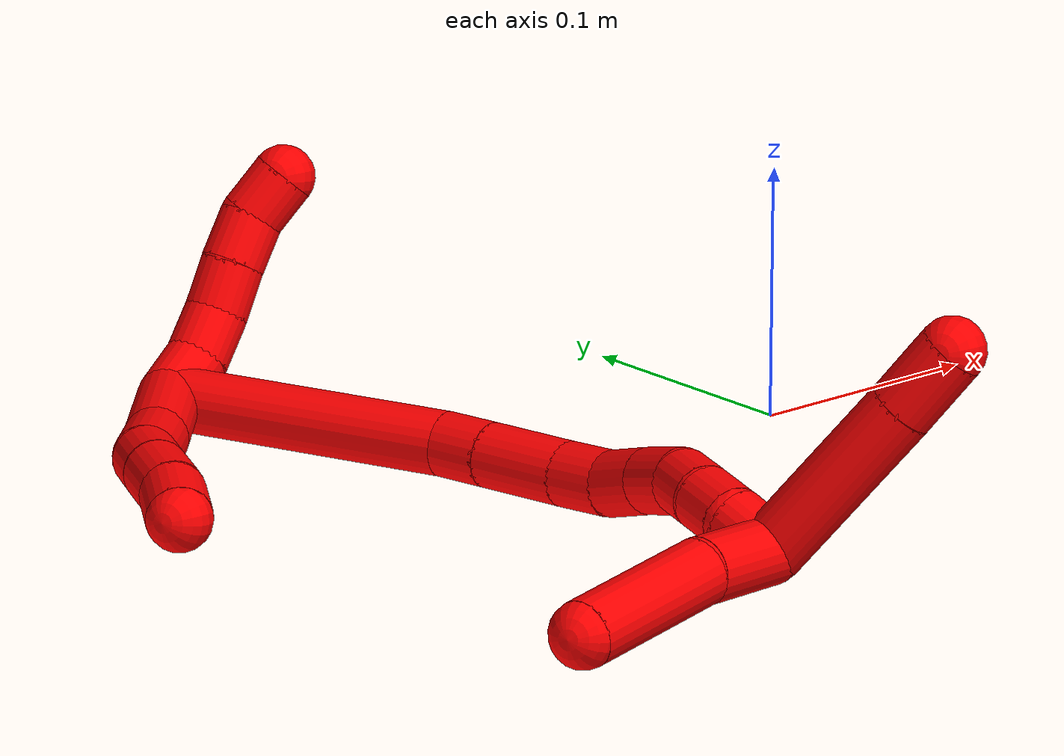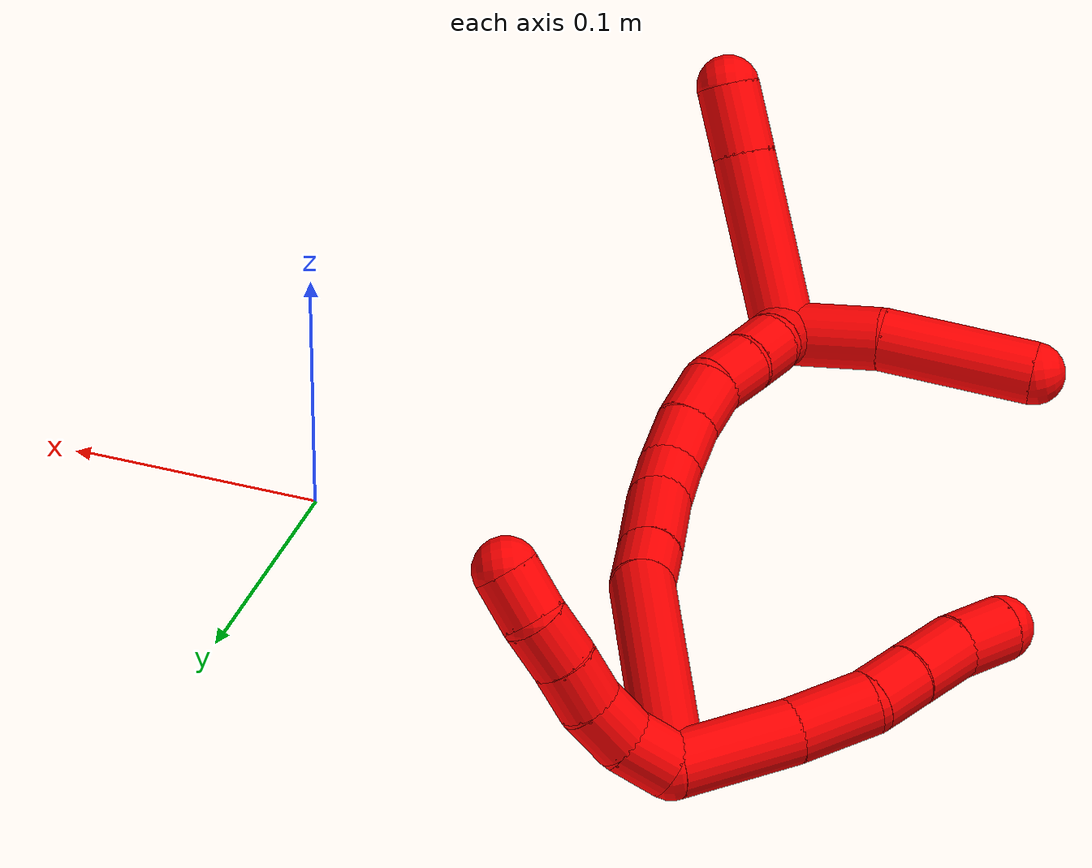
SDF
<sdf version="1.7">
 <world name="default">
  <model name="2">
   <static>0</static>
   <link name="2">
    <collision name="collision-cylinder-e_1_2_8">
     <pose>-0.003191 -0.010107 0.022033 0.430101 -0.13089 -0.028629</pose>
     <geometry><cylinder><radius>0.0125</radius><length>0.0489</length></cylinder></geometry>
     <surface>
      <friction><ode><mu>1.16</mu><mu2>1.16</mu2><slip1>0</slip1><slip2>0</slip2></ode></friction>
      <contact><ode><kp>1e+06</kp><kd>1</kd><max_vel>0</max_vel><min_depth>0.001</min_depth></ode></contact>
     </surface>
    </collision>
    <visual name="visual-cylinder-e_1_2_8">
     <pose>-0.003191 -0.010107 0.022033 0.430101 -0.13089 -0.028629</pose>
     <geometry><cylinder><radius>0.0125</radius><length>0.0489</length></cylinder></geometry>
     <material><ambient>1 0 0 1</ambient></material>
    </visual>
    <collision name="collision-cylinder-e_2_8_9">
     <pose>-0.006715 -0.026523 0.058669 0.407767 -0.020921 -0.004326</pose>
     <geometry><cylinder><radius>0.0125</radius><length>0.031822</length></cylinder></geometry>
     <surface>
      <friction><ode><mu>1.16</mu><mu2>1.16</mu2><slip1>0</slip1><slip2>0</slip2></ode></friction>
      <contact><ode><kp>1e+06</kp><kd>1</kd><max_vel>0</max_vel><min_depth>0.001</min_depth></ode></contact>
     </surface>
    </collision>
    <visual name="visual-cylinder-e_2_8_9">
     <pose>-0.006715 -0.026523 0.058669 0.407767 -0.020921 -0.004326</pose>
     <geometry><cylinder><radius>0.0125</radius><length>0.031822</length></cylinder></geometry>
     <material><ambient>1 0 0 1</ambient></material>
    </visual>
    <collision name="collision-cylinder-e_3_9_10">
     <pose>-0.007353 -0.039831 0.081183 0.72432 -0.028839 -0.010927</pose>
     <geometry><cylinder><radius>0.0125</radius><length>0.021135</length></cylinder></geometry>
     <surface>
      <friction><ode><mu>1.16</mu><mu2>1.16</mu2><slip1>0</slip1><slip2>0</slip2></ode></friction>
      <contact><ode><kp>1e+06</kp><kd>1</kd><max_vel>0</max_vel><min_depth>0.001</min_depth></ode></contact>
     </surface>
    </collision>
    <visual name="visual-cylinder-e_3_9_10">
     <pose>-0.007353 -0.039831 0.081183 0.72432 -0.028839 -0.010927</pose>
     <geometry><cylinder><radius>0.0125</radius><length>0.021135</length></cylinder></geometry>
     <material><ambient>1 0 0 1</ambient></material>
    </visual>
    <collision name="collision-cylinder-e_4_10_11">
     <pose>-0.008657 -0.055552 0.09794 0.778403 -0.080301 -0.032948</pose>
     <geometry><cylinder><radius>0.0125</radius><length>0.024926</length></cylinder></geometry>
     <surface>
      <friction><ode><mu>1.16</mu><mu2>1.16</mu2><slip1>0</slip1><slip2>0</slip2></ode></friction>
      <contact><ode><kp>1e+06</kp><kd>1</kd><max_vel>0</max_vel><min_depth>0.001</min_depth></ode></contact>
     </surface>
    </collision>
    <visual name="visual-cylinder-e_4_10_11">
     <pose>-0.008657 -0.055552 0.09794 0.778403 -0.080301 -0.032948</pose>
     <geometry><cylinder><radius>0.0125</radius><length>0.024926</length></cylinder></geometry>
     <material><ambient>1 0 0 1</ambient></material>
    </visual>
    <collision name="collision-cylinder-e_5_11_6">
     <pose>-0.011726 -0.071173 0.11589 0.648364 -0.179195 -0.06036</pose>
     <geometry><cylinder><radius>0.0125</radius><length>0.023218</length></cylinder></geometry>
     <surface>
      <friction><ode><mu>1.16</mu><mu2>1.16</mu2><slip1>0</slip1><slip2>0</slip2></ode></friction>
      <contact><ode><kp>1e+06</kp><kd>1</kd><max_vel>0</max_vel><min_depth>0.001</min_depth></ode></contact>
     </surface>
    </collision>
    <visual name="visual-cylinder-e_5_11_6">
     <pose>-0.011726 -0.071173 0.11589 0.648364 -0.179195 -0.06036</pose>
     <geometry><cylinder><radius>0.0125</radius><length>0.023218</length></cylinder></geometry>
     <material><ambient>1 0 0 1</ambient></material>
    </visual>
    <collision name="collision-cylinder-e_1_2_12">
     <pose>0.006511 -0.001034 -0.007519 3.00488 0.708972 2.77579</pose>
     <geometry><cylinder><radius>0.0125</radius><length>0.02</length></cylinder></geometry>
     <surface>
      <friction><ode><mu>1.16</mu><mu2>1.16</mu2><slip1>0</slip1><slip2>0</slip2></ode></friction>
      <contact><ode><kp>1e+06</kp><kd>1</kd><max_vel>0</max_vel><min_depth>0.001</min_depth></ode></contact>
     </surface>
    </collision>
    <visual name="visual-cylinder-e_1_2_12">
     <pose>0.006511 -0.001034 -0.007519 3.00488 0.708972 2.77579</pose>
     <geometry><cylinder><radius>0.0125</radius><length>0.02</length></cylinder></geometry>
     <material><ambient>1 0 0 1</ambient></material>
    </visual>
    <collision name="collision-cylinder-e_2_12_13">
     <pose>0.021533 -0.002631 -0.020258 3.03431 1.0182 2.94979</pose>
     <geometry><cylinder><radius>0.0125</radius><length>0.02</length></cylinder></geometry>
     <surface>
      <friction><ode><mu>1.16</mu><mu2>1.16</mu2><slip1>0</slip1><slip2>0</slip2></ode></friction>
      <contact><ode><kp>1e+06</kp><kd>1</kd><max_vel>0</max_vel><min_depth>0.001</min_depth></ode></contact>
     </surface>
    </collision>
    <visual name="visual-cylinder-e_2_12_13">
     <pose>0.021533 -0.002631 -0.020258 3.03431 1.0182 2.94979</pose>
     <geometry><cylinder><radius>0.0125</radius><length>0.02</length></cylinder></geometry>
     <material><ambient>1 0 0 1</ambient></material>
    </visual>
    <collision name="collision-cylinder-e_3_13_14">
     <pose>0.039417 -0.004058 -0.028855 2.89097 1.21457 2.78292</pose>
     <geometry><cylinder><radius>0.0125</radius><length>0.02</length></cylinder></geometry>
     <surface>
      <friction><ode><mu>1.16</mu><mu2>1.16</mu2><slip1>0</slip1><slip2>0</slip2></ode></friction>
      <contact><ode><kp>1e+06</kp><kd>1</kd><max_vel>0</max_vel><min_depth>0.001</min_depth></ode></contact>
     </surface>
    </collision>
    <visual name="visual-cylinder-e_3_13_14">
     <pose>0.039417 -0.004058 -0.028855 2.89097 1.21457 2.78292</pose>
     <geometry><cylinder><radius>0.0125</radius><length>0.02</length></cylinder></geometry>
     <material><ambient>1 0 0 1</ambient></material>
    </visual>
    <collision name="collision-cylinder-e_4_14_15">
     <pose>0.05788 -0.006115 -0.036225 2.85141 1.1411 2.69385</pose>
     <geometry><cylinder><radius>0.0125</radius><length>0.02</length></cylinder></geometry>
     <surface>
      <friction><ode><mu>1.16</mu><mu2>1.16</mu2><slip1>0</slip1><slip2>0</slip2></ode></friction>
      <contact><ode><kp>1e+06</kp><kd>1</kd><max_vel>0</max_vel><min_depth>0.001</min_depth></ode></contact>
     </surface>
    </collision>
    <visual name="visual-cylinder-e_4_14_15">
     <pose>0.05788 -0.006115 -0.036225 2.85141 1.1411 2.69385</pose>
     <geometry><cylinder><radius>0.0125</radius><length>0.02</length></cylinder></geometry>
     <material><ambient>1 0 0 1</ambient></material>
    </visual>
    <collision name="collision-cylinder-e_5_15_5">
     <pose>0.075226 -0.011569 -0.043917 2.2857 0.971136 1.71603</pose>
     <geometry><cylinder><radius>0.0125</radius><length>0.02</length></cylinder></geometry>
     <surface>
      <friction><ode><mu>1.16</mu><mu2>1.16</mu2><slip1>0</slip1><slip2>0</slip2></ode></friction>
      <contact><ode><kp>1e+06</kp><kd>1</kd><max_vel>0</max_vel><min_depth>0.001</min_depth></ode></contact>
     </surface>
    </collision>
    <visual name="visual-cylinder-e_5_15_5">
     <pose>0.075226 -0.011569 -0.043917 2.2857 0.971136 1.71603</pose>
     <geometry><cylinder><radius>0.0125</radius><length>0.02</length></cylinder></geometry>
     <material><ambient>1 0 0 1</ambient></material>
    </visual>
    <collision name="collision-cylinder-e_1_2_16">
     <pose>0.000684 -0.058507 -0.002473 1.61303 0.011681 0.012185</pose>
     <geometry><cylinder><radius>0.0125</radius><length>0.117126</length></cylinder></geometry>
     <surface>
      <friction><ode><mu>1.16</mu><mu2>1.16</mu2><slip1>0</slip1><slip2>0</slip2></ode></friction>
      <contact><ode><kp>1e+06</kp><kd>1</kd><max_vel>0</max_vel><min_depth>0.001</min_depth></ode></contact>
     </surface>
    </collision>
    <visual name="visual-cylinder-e_1_2_16">
     <pose>0.000684 -0.058507 -0.002473 1.61303 0.011681 0.012185</pose>
     <geometry><cylinder><radius>0.0125</radius><length>0.117126</length></cylinder></geometry>
     <material><ambient>1 0 0 1</ambient></material>
    </visual>
    <collision name="collision-cylinder-e_2_16_17">
     <pose>0.001384 -0.127619 -0.003081 1.39678 0.001503 0.001262</pose>
     <geometry><cylinder><radius>0.0125</radius><length>0.021536</length></cylinder></geometry>
     <surface>
      <friction><ode><mu>1.16</mu><mu2>1.16</mu2><slip1>0</slip1><slip2>0</slip2></ode></friction>
      <contact><ode><kp>1e+06</kp><kd>1</kd><max_vel>0</max_vel><min_depth>0.001</min_depth></ode></contact>
     </surface>
    </collision>
    <visual name="visual-cylinder-e_2_16_17">
     <pose>0.001384 -0.127619 -0.003081 1.39678 0.001503 0.001262</pose>
     <geometry><cylinder><radius>0.0125</radius><length>0.021536</length></cylinder></geometry>
     <material><ambient>1 0 0 1</ambient></material>
    </visual>
    <collision name="collision-cylinder-e_3_17_18">
     <pose>0.00127 -0.155616 0.001443 1.41904 -0.007404 -0.006358</pose>
     <geometry><cylinder><radius>0.0125</radius><length>0.035187</length></cylinder></geometry>
     <surface>
      <friction><ode><mu>1.16</mu><mu2>1.16</mu2><slip1>0</slip1><slip2>0</slip2></ode></friction>
      <contact><ode><kp>1e+06</kp><kd>1</kd><max_vel>0</max_vel><min_depth>0.001</min_depth></ode></contact>
     </surface>
    </collision>
    <visual name="visual-cylinder-e_3_17_18">
     <pose>0.00127 -0.155616 0.001443 1.41904 -0.007404 -0.006358</pose>
     <geometry><cylinder><radius>0.0125</radius><length>0.035187</length></cylinder></geometry>
     <material><ambient>1 0 0 1</ambient></material>
    </visual>
    <collision name="collision-cylinder-e_4_18_19">
     <pose>0.00153 -0.183518 0.006754 1.32367 0.035977 0.028029</pose>
     <geometry><cylinder><radius>0.0125</radius><length>0.021696</length></cylinder></geometry>
     <surface>
      <friction><ode><mu>1.16</mu><mu2>1.16</mu2><slip1>0</slip1><slip2>0</slip2></ode></friction>
      <contact><ode><kp>1e+06</kp><kd>1</kd><max_vel>0</max_vel><min_depth>0.001</min_depth></ode></contact>
     </surface>
    </collision>
    <visual name="visual-cylinder-e_4_18_19">
     <pose>0.00153 -0.183518 0.006754 1.32367 0.035977 0.028029</pose>
     <geometry><cylinder><radius>0.0125</radius><length>0.021696</length></cylinder></geometry>
     <material><ambient>1 0 0 1</ambient></material>
    </visual>
    <collision name="collision-cylinder-e_5_19_20">
     <pose>0.004906 -0.203706 0.013702 1.15303 0.274866 0.179368</pose>
     <geometry><cylinder><radius>0.0125</radius><length>0.022</length></cylinder></geometry>
     <surface>
      <friction><ode><mu>1.16</mu><mu2>1.16</mu2><slip1>0</slip1><slip2>0</slip2></ode></friction>
      <contact><ode><kp>1e+06</kp><kd>1</kd><max_vel>0</max_vel><min_depth>0.001</min_depth></ode></contact>
     </surface>
    </collision>
    <visual name="visual-cylinder-e_5_19_20">
     <pose>0.004906 -0.203706 0.013702 1.15303 0.274866 0.179368</pose>
     <geometry><cylinder><radius>0.0125</radius><length>0.022</length></cylinder></geometry>
     <material><ambient>1 0 0 1</ambient></material>
    </visual>
    <collision name="collision-cylinder-e_6_20_21">
     <pose>0.010296 -0.222386 0.023571 1.01646 0.223285 0.124735</pose>
     <geometry><cylinder><radius>0.0125</radius><length>0.021719</length></cylinder></geometry>
     <surface>
      <friction><ode><mu>1.16</mu><mu2>1.16</mu2><slip1>0</slip1><slip2>0</slip2></ode></friction>
      <contact><ode><kp>1e+06</kp><kd>1</kd><max_vel>0</max_vel><min_depth>0.001</min_depth></ode></contact>
     </surface>
    </collision>
    <visual name="visual-cylinder-e_6_20_21">
     <pose>0.010296 -0.222386 0.023571 1.01646 0.223285 0.124735</pose>
     <geometry><cylinder><radius>0.0125</radius><length>0.021719</length></cylinder></geometry>
     <material><ambient>1 0 0 1</ambient></material>
    </visual>
    <collision name="collision-cylinder-e_7_21_22">
     <pose>0.011992 -0.239123 0.035913 0.851892 -0.06887 -0.031258</pose>
     <geometry><cylinder><radius>0.0125</radius><length>0.020599</length></cylinder></geometry>
     <surface>
      <friction><ode><mu>1.16</mu><mu2>1.16</mu2><slip1>0</slip1><slip2>0</slip2></ode></friction>
      <contact><ode><kp>1e+06</kp><kd>1</kd><max_vel>0</max_vel><min_depth>0.001</min_depth></ode></contact>
     </surface>
    </collision>
    <visual name="visual-cylinder-e_7_21_22">
     <pose>0.011992 -0.239123 0.035913 0.851892 -0.06887 -0.031258</pose>
     <geometry><cylinder><radius>0.0125</radius><length>0.020599</length></cylinder></geometry>
     <material><ambient>1 0 0 1</ambient></material>
    </visual>
    <collision name="collision-cylinder-e_8_22_23">
     <pose>0.009659 -0.255163 0.048064 0.995772 -0.162585 -0.088512</pose>
     <geometry><cylinder><radius>0.0125</radius><length>0.020065</length></cylinder></geometry>
     <surface>
      <friction><ode><mu>1.16</mu><mu2>1.16</mu2><slip1>0</slip1><slip2>0</slip2></ode></friction>
      <contact><ode><kp>1e+06</kp><kd>1</kd><max_vel>0</max_vel><min_depth>0.001</min_depth></ode></contact>
     </surface>
    </collision>
    <visual name="visual-cylinder-e_8_22_23">
     <pose>0.009659 -0.255163 0.048064 0.995772 -0.162585 -0.088512</pose>
     <geometry><cylinder><radius>0.0125</radius><length>0.020065</length></cylinder></geometry>
     <material><ambient>1 0 0 1</ambient></material>
    </visual>
    <collision name="collision-cylinder-e_9_23_1">
     <pose>0.004571 -0.272412 0.056413 1.25062 -0.35243 -0.255703</pose>
     <geometry><cylinder><radius>0.0125</radius><length>0.020072</length></cylinder></geometry>
     <surface>
      <friction><ode><mu>1.16</mu><mu2>1.16</mu2><slip1>0</slip1><slip2>0</slip2></ode></friction>
      <contact><ode><kp>1e+06</kp><kd>1</kd><max_vel>0</max_vel><min_depth>0.001</min_depth></ode></contact>
     </surface>
    </collision>
    <visual name="visual-cylinder-e_9_23_1">
     <pose>0.004571 -0.272412 0.056413 1.25062 -0.35243 -0.255703</pose>
     <geometry><cylinder><radius>0.0125</radius><length>0.020072</length></cylinder></geometry>
     <material><ambient>1 0 0 1</ambient></material>
    </visual>
    <collision name="collision-cylinder-e_1_1_24">
     <pose>0.030169 -0.302313 0.056462 1.70899 0.941407 1.05792</pose>
     <geometry><cylinder><radius>0.0125</radius><length>0.071902</length></cylinder></geometry>
     <surface>
      <friction><ode><mu>1.16</mu><mu2>1.16</mu2><slip1>0</slip1><slip2>0</slip2></ode></friction>
      <contact><ode><kp>1e+06</kp><kd>1</kd><max_vel>0</max_vel><min_depth>0.001</min_depth></ode></contact>
     </surface>
    </collision>
    <visual name="visual-cylinder-e_1_1_24">
     <pose>0.030169 -0.302313 0.056462 1.70899 0.941407 1.05792</pose>
     <geometry><cylinder><radius>0.0125</radius><length>0.071902</length></cylinder></geometry>
     <material><ambient>1 0 0 1</ambient></material>
    </visual>
    <collision name="collision-cylinder-e_2_24_4">
     <pose>0.070786 -0.331175 0.052349 1.72127 0.965719 1.09509</pose>
     <geometry><cylinder><radius>0.0125</radius><length>0.028098</length></cylinder></geometry>
     <surface>
      <friction><ode><mu>1.16</mu><mu2>1.16</mu2><slip1>0</slip1><slip2>0</slip2></ode></friction>
      <contact><ode><kp>1e+06</kp><kd>1</kd><max_vel>0</max_vel><min_depth>0.001</min_depth></ode></contact>
     </surface>
    </collision>
    <visual name="visual-cylinder-e_2_24_4">
     <pose>0.070786 -0.331175 0.052349 1.72127 0.965719 1.09509</pose>
     <geometry><cylinder><radius>0.0125</radius><length>0.028098</length></cylinder></geometry>
     <material><ambient>1 0 0 1</ambient></material>
    </visual>
    <collision name="collision-cylinder-e_1_1_25">
     <pose>-0.000465 -0.27659 0.077979 -0.250589 -0.081705 0.010297</pose>
     <geometry><cylinder><radius>0.0125</radius><length>0.038532</length></cylinder></geometry>
     <surface>
      <friction><ode><mu>1.16</mu><mu2>1.16</mu2><slip1>0</slip1><slip2>0</slip2></ode></friction>
      <contact><ode><kp>1e+06</kp><kd>1</kd><max_vel>0</max_vel><min_depth>0.001</min_depth></ode></contact>
     </surface>
    </collision>
    <visual name="visual-cylinder-e_1_1_25">
     <pose>-0.000465 -0.27659 0.077979 -0.250589 -0.081705 0.010297</pose>
     <geometry><cylinder><radius>0.0125</radius><length>0.038532</length></cylinder></geometry>
     <material><ambient>1 0 0 1</ambient></material>
    </visual>
    <collision name="collision-cylinder-e_2_25_3">
     <pose>-0.009829 -0.263777 0.1252 -0.274267 -0.256291 0.035559</pose>
     <geometry><cylinder><radius>0.0125</radius><length>0.061468</length></cylinder></geometry>
     <surface>
      <friction><ode><mu>1.16</mu><mu2>1.16</mu2><slip1>0</slip1><slip2>0</slip2></ode></friction>
      <contact><ode><kp>1e+06</kp><kd>1</kd><max_vel>0</max_vel><min_depth>0.001</min_depth></ode></contact>
     </surface>
    </collision>
    <visual name="visual-cylinder-e_2_25_3">
     <pose>-0.009829 -0.263777 0.1252 -0.274267 -0.256291 0.035559</pose>
     <geometry><cylinder><radius>0.0125</radius><length>0.061468</length></cylinder></geometry>
     <material><ambient>1 0 0 1</ambient></material>
    </visual>
    <collision name="collision-sphere-3">
     <pose>-0.01762 -0.255725 0.153819 0 -0 0</pose>
     <geometry><sphere><radius>0.0125</radius></sphere></geometry>
     <surface>
      <friction><ode><mu>1.16</mu><mu2>1.16</mu2><slip1>0</slip1><slip2>0</slip2></ode></friction>
      <contact><ode><kp>1e+06</kp><kd>1</kd><max_vel>0</max_vel><min_depth>0.001</min_depth></ode></contact>
     </surface>
    </collision>
    <visual name="visual-sphere-3">
     <pose>-0.01762 -0.255725 0.153819 0 -0 0</pose>
     <geometry><sphere><radius>0.0125</radius></sphere></geometry>
     <material><ambient>1 0 0 1</ambient></material>
    </visual>
    <collision name="collision-sphere-25">
     <pose>-0.002038 -0.271829 0.096581 0 -0 0</pose>
     <geometry><sphere><radius>0.0125</radius></sphere></geometry>
     <surface>
      <friction><ode><mu>1.16</mu><mu2>1.16</mu2><slip1>0</slip1><slip2>0</slip2></ode></friction>
      <contact><ode><kp>1e+06</kp><kd>1</kd><max_vel>0</max_vel><min_depth>0.001</min_depth></ode></contact>
     </surface>
    </collision>
    <visual name="visual-sphere-25">
     <pose>-0.002038 -0.271829 0.096581 0 -0 0</pose>
     <geometry><sphere><radius>0.0125</radius></sphere></geometry>
     <material><ambient>1 0 0 1</ambient></material>
    </visual>
    <collision name="collision-sphere-4">
     <pose>0.082341 -0.339076 0.051151 0 -0 0</pose>
     <geometry><sphere><radius>0.0125</radius></sphere></geometry>
     <surface>
      <friction><ode><mu>1.16</mu><mu2>1.16</mu2><slip1>0</slip1><slip2>0</slip2></ode></friction>
      <contact><ode><kp>1e+06</kp><kd>1</kd><max_vel>0</max_vel><min_depth>0.001</min_depth></ode></contact>
     </surface>
    </collision>
    <visual name="visual-sphere-4">
     <pose>0.082341 -0.339076 0.051151 0 -0 0</pose>
     <geometry><sphere><radius>0.0125</radius></sphere></geometry>
     <material><ambient>1 0 0 1</ambient></material>
    </visual>
    <collision name="collision-sphere-24">
     <pose>0.059231 -0.323273 0.053547 0 -0 0</pose>
     <geometry><sphere><radius>0.0125</radius></sphere></geometry>
     <surface>
      <friction><ode><mu>1.16</mu><mu2>1.16</mu2><slip1>0</slip1><slip2>0</slip2></ode></friction>
      <contact><ode><kp>1e+06</kp><kd>1</kd><max_vel>0</max_vel><min_depth>0.001</min_depth></ode></contact>
     </surface>
    </collision>
    <visual name="visual-sphere-24">
     <pose>0.059231 -0.323273 0.053547 0 -0 0</pose>
     <geometry><sphere><radius>0.0125</radius></sphere></geometry>
     <material><ambient>1 0 0 1</ambient></material>
    </visual>
    <collision name="collision-sphere-1">
     <pose>0.001107 -0.281352 0.059377 0 -0 0</pose>
     <geometry><sphere><radius>0.0125</radius></sphere></geometry>
     <surface>
      <friction><ode><mu>1.16</mu><mu2>1.16</mu2><slip1>0</slip1><slip2>0</slip2></ode></friction>
      <contact><ode><kp>1e+06</kp><kd>1</kd><max_vel>0</max_vel><min_depth>0.001</min_depth></ode></contact>
     </surface>
    </collision>
    <visual name="visual-sphere-1">
     <pose>0.001107 -0.281352 0.059377 0 -0 0</pose>
     <geometry><sphere><radius>0.0125</radius></sphere></geometry>
     <material><ambient>1 0 0 1</ambient></material>
    </visual>
    <collision name="collision-sphere-23">
     <pose>0.008035 -0.263471 0.053448 0 -0 0</pose>
     <geometry><sphere><radius>0.0125</radius></sphere></geometry>
     <surface>
      <friction><ode><mu>1.16</mu><mu2>1.16</mu2><slip1>0</slip1><slip2>0</slip2></ode></friction>
      <contact><ode><kp>1e+06</kp><kd>1</kd><max_vel>0</max_vel><min_depth>0.001</min_depth></ode></contact>
     </surface>
    </collision>
    <visual name="visual-sphere-23">
     <pose>0.008035 -0.263471 0.053448 0 -0 0</pose>
     <geometry><sphere><radius>0.0125</radius></sphere></geometry>
     <material><ambient>1 0 0 1</ambient></material>
    </visual>
    <collision name="collision-sphere-22">
     <pose>0.011283 -0.246855 0.042679 0 -0 0</pose>
     <geometry><sphere><radius>0.0125</radius></sphere></geometry>
     <surface>
      <friction><ode><mu>1.16</mu><mu2>1.16</mu2><slip1>0</slip1><slip2>0</slip2></ode></friction>
      <contact><ode><kp>1e+06</kp><kd>1</kd><max_vel>0</max_vel><min_depth>0.001</min_depth></ode></contact>
     </surface>
    </collision>
    <visual name="visual-sphere-22">
     <pose>0.011283 -0.246855 0.042679 0 -0 0</pose>
     <geometry><sphere><radius>0.0125</radius></sphere></geometry>
     <material><ambient>1 0 0 1</ambient></material>
    </visual>
    <collision name="collision-sphere-21">
     <pose>0.012701 -0.231391 0.029146 0 -0 0</pose>
     <geometry><sphere><radius>0.0125</radius></sphere></geometry>
     <surface>
      <friction><ode><mu>1.16</mu><mu2>1.16</mu2><slip1>0</slip1><slip2>0</slip2></ode></friction>
      <contact><ode><kp>1e+06</kp><kd>1</kd><max_vel>0</max_vel><min_depth>0.001</min_depth></ode></contact>
     </surface>
    </collision>
    <visual name="visual-sphere-21">
     <pose>0.012701 -0.231391 0.029146 0 -0 0</pose>
     <geometry><sphere><radius>0.0125</radius></sphere></geometry>
     <material><ambient>1 0 0 1</ambient></material>
    </visual>
    <collision name="collision-sphere-6">
     <pose>-0.013795 -0.078072 0.124995 0 -0 0</pose>
     <geometry><sphere><radius>0.0125</radius></sphere></geometry>
     <surface>
      <friction><ode><mu>1.16</mu><mu2>1.16</mu2><slip1>0</slip1><slip2>0</slip2></ode></friction>
      <contact><ode><kp>1e+06</kp><kd>1</kd><max_vel>0</max_vel><min_depth>0.001</min_depth></ode></contact>
     </surface>
    </collision>
    <visual name="visual-sphere-6">
     <pose>-0.013795 -0.078072 0.124995 0 -0 0</pose>
     <geometry><sphere><radius>0.0125</radius></sphere></geometry>
     <material><ambient>1 0 0 1</ambient></material>
    </visual>
    <collision name="collision-sphere-11">
     <pose>-0.009657 -0.064275 0.106785 0 -0 0</pose>
     <geometry><sphere><radius>0.0125</radius></sphere></geometry>
     <surface>
      <friction><ode><mu>1.16</mu><mu2>1.16</mu2><slip1>0</slip1><slip2>0</slip2></ode></friction>
      <contact><ode><kp>1e+06</kp><kd>1</kd><max_vel>0</max_vel><min_depth>0.001</min_depth></ode></contact>
     </surface>
    </collision>
    <visual name="visual-sphere-11">
     <pose>-0.009657 -0.064275 0.106785 0 -0 0</pose>
     <geometry><sphere><radius>0.0125</radius></sphere></geometry>
     <material><ambient>1 0 0 1</ambient></material>
    </visual>
    <collision name="collision-sphere-10">
     <pose>-0.007657 -0.04683 0.089094 0 -0 0</pose>
     <geometry><sphere><radius>0.0125</radius></sphere></geometry>
     <surface>
      <friction><ode><mu>1.16</mu><mu2>1.16</mu2><slip1>0</slip1><slip2>0</slip2></ode></friction>
      <contact><ode><kp>1e+06</kp><kd>1</kd><max_vel>0</max_vel><min_depth>0.001</min_depth></ode></contact>
     </surface>
    </collision>
    <visual name="visual-sphere-10">
     <pose>-0.007657 -0.04683 0.089094 0 -0 0</pose>
     <geometry><sphere><radius>0.0125</radius></sphere></geometry>
     <material><ambient>1 0 0 1</ambient></material>
    </visual>
    <collision name="collision-sphere-9">
     <pose>-0.007048 -0.032831 0.073272 0 -0 0</pose>
     <geometry><sphere><radius>0.0125</radius></sphere></geometry>
     <surface>
      <friction><ode><mu>1.16</mu><mu2>1.16</mu2><slip1>0</slip1><slip2>0</slip2></ode></friction>
      <contact><ode><kp>1e+06</kp><kd>1</kd><max_vel>0</max_vel><min_depth>0.001</min_depth></ode></contact>
     </surface>
    </collision>
    <visual name="visual-sphere-9">
     <pose>-0.007048 -0.032831 0.073272 0 -0 0</pose>
     <geometry><sphere><radius>0.0125</radius></sphere></geometry>
     <material><ambient>1 0 0 1</ambient></material>
    </visual>
    <collision name="collision-sphere-2">
     <geometry><sphere><radius>0.0125</radius></sphere></geometry>
     <surface>
      <friction><ode><mu>1.16</mu><mu2>1.16</mu2><slip1>0</slip1><slip2>0</slip2></ode></friction>
      <contact><ode><kp>1e+06</kp><kd>1</kd><max_vel>0</max_vel><min_depth>0.001</min_depth></ode></contact>
     </surface>
    </collision>
    <visual name="visual-sphere-2">
     <geometry><sphere><radius>0.0125</radius></sphere></geometry>
     <material><ambient>1 0 0 1</ambient></material>
    </visual>
    <collision name="collision-sphere-19">
     <pose>0.00192 -0.194029 0.009406 0 -0 0</pose>
     <geometry><sphere><radius>0.0125</radius></sphere></geometry>
     <surface>
      <friction><ode><mu>1.16</mu><mu2>1.16</mu2><slip1>0</slip1><slip2>0</slip2></ode></friction>
      <contact><ode><kp>1e+06</kp><kd>1</kd><max_vel>0</max_vel><min_depth>0.001</min_depth></ode></contact>
     </surface>
    </collision>
    <visual name="visual-sphere-19">
     <pose>0.00192 -0.194029 0.009406 0 -0 0</pose>
     <geometry><sphere><radius>0.0125</radius></sphere></geometry>
     <material><ambient>1 0 0 1</ambient></material>
    </visual>
    <collision name="collision-sphere-8">
     <pose>-0.006382 -0.020215 0.044066 0 -0 0</pose>
     <geometry><sphere><radius>0.0125</radius></sphere></geometry>
     <surface>
      <friction><ode><mu>1.16</mu><mu2>1.16</mu2><slip1>0</slip1><slip2>0</slip2></ode></friction>
      <contact><ode><kp>1e+06</kp><kd>1</kd><max_vel>0</max_vel><min_depth>0.001</min_depth></ode></contact>
     </surface>
    </collision>
    <visual name="visual-sphere-8">
     <pose>-0.006382 -0.020215 0.044066 0 -0 0</pose>
     <geometry><sphere><radius>0.0125</radius></sphere></geometry>
     <material><ambient>1 0 0 1</ambient></material>
    </visual>
    <collision name="collision-sphere-12">
     <pose>0.013021 -0.002069 -0.015039 0 -0 0</pose>
     <geometry><sphere><radius>0.0125</radius></sphere></geometry>
     <surface>
      <friction><ode><mu>1.16</mu><mu2>1.16</mu2><slip1>0</slip1><slip2>0</slip2></ode></friction>
      <contact><ode><kp>1e+06</kp><kd>1</kd><max_vel>0</max_vel><min_depth>0.001</min_depth></ode></contact>
     </surface>
    </collision>
    <visual name="visual-sphere-12">
     <pose>0.013021 -0.002069 -0.015039 0 -0 0</pose>
     <geometry><sphere><radius>0.0125</radius></sphere></geometry>
     <material><ambient>1 0 0 1</ambient></material>
    </visual>
    <collision name="collision-sphere-13">
     <pose>0.030044 -0.003193 -0.025477 0 -0 0</pose>
     <geometry><sphere><radius>0.0125</radius></sphere></geometry>
     <surface>
      <friction><ode><mu>1.16</mu><mu2>1.16</mu2><slip1>0</slip1><slip2>0</slip2></ode></friction>
      <contact><ode><kp>1e+06</kp><kd>1</kd><max_vel>0</max_vel><min_depth>0.001</min_depth></ode></contact>
     </surface>
    </collision>
    <visual name="visual-sphere-13">
     <pose>0.030044 -0.003193 -0.025477 0 -0 0</pose>
     <geometry><sphere><radius>0.0125</radius></sphere></geometry>
     <material><ambient>1 0 0 1</ambient></material>
    </visual>
    <collision name="collision-sphere-14">
     <pose>0.048789 -0.004923 -0.032233 0 -0 0</pose>
     <geometry><sphere><radius>0.0125</radius></sphere></geometry>
     <surface>
      <friction><ode><mu>1.16</mu><mu2>1.16</mu2><slip1>0</slip1><slip2>0</slip2></ode></friction>
      <contact><ode><kp>1e+06</kp><kd>1</kd><max_vel>0</max_vel><min_depth>0.001</min_depth></ode></contact>
     </surface>
    </collision>
    <visual name="visual-sphere-14">
     <pose>0.048789 -0.004923 -0.032233 0 -0 0</pose>
     <geometry><sphere><radius>0.0125</radius></sphere></geometry>
     <material><ambient>1 0 0 1</ambient></material>
    </visual>
    <collision name="collision-sphere-15">
     <pose>0.066971 -0.007307 -0.040217 0 -0 0</pose>
     <geometry><sphere><radius>0.0125</radius></sphere></geometry>
     <surface>
      <friction><ode><mu>1.16</mu><mu2>1.16</mu2><slip1>0</slip1><slip2>0</slip2></ode></friction>
      <contact><ode><kp>1e+06</kp><kd>1</kd><max_vel>0</max_vel><min_depth>0.001</min_depth></ode></contact>
     </surface>
    </collision>
    <visual name="visual-sphere-15">
     <pose>0.066971 -0.007307 -0.040217 0 -0 0</pose>
     <geometry><sphere><radius>0.0125</radius></sphere></geometry>
     <material><ambient>1 0 0 1</ambient></material>
    </visual>
    <collision name="collision-sphere-5">
     <pose>0.083481 -0.01583 -0.047616 0 -0 0</pose>
     <geometry><sphere><radius>0.0125</radius></sphere></geometry>
     <surface>
      <friction><ode><mu>1.16</mu><mu2>1.16</mu2><slip1>0</slip1><slip2>0</slip2></ode></friction>
      <contact><ode><kp>1e+06</kp><kd>1</kd><max_vel>0</max_vel><min_depth>0.001</min_depth></ode></contact>
     </surface>
    </collision>
    <visual name="visual-sphere-5">
     <pose>0.083481 -0.01583 -0.047616 0 -0 0</pose>
     <geometry><sphere><radius>0.0125</radius></sphere></geometry>
     <material><ambient>1 0 0 1</ambient></material>
    </visual>
    <collision name="collision-sphere-16">
     <pose>0.001368 -0.117014 -0.004945 0 -0 0</pose>
     <geometry><sphere><radius>0.0125</radius></sphere></geometry>
     <surface>
      <friction><ode><mu>1.16</mu><mu2>1.16</mu2><slip1>0</slip1><slip2>0</slip2></ode></friction>
      <contact><ode><kp>1e+06</kp><kd>1</kd><max_vel>0</max_vel><min_depth>0.001</min_depth></ode></contact>
     </surface>
    </collision>
    <visual name="visual-sphere-16">
     <pose>0.001368 -0.117014 -0.004945 0 -0 0</pose>
     <geometry><sphere><radius>0.0125</radius></sphere></geometry>
     <material><ambient>1 0 0 1</ambient></material>
    </visual>
    <collision name="collision-sphere-17">
     <pose>0.0014 -0.138225 -0.001217 0 -0 0</pose>
     <geometry><sphere><radius>0.0125</radius></sphere></geometry>
     <surface>
      <friction><ode><mu>1.16</mu><mu2>1.16</mu2><slip1>0</slip1><slip2>0</slip2></ode></friction>
      <contact><ode><kp>1e+06</kp><kd>1</kd><max_vel>0</max_vel><min_depth>0.001</min_depth></ode></contact>
     </surface>
    </collision>
    <visual name="visual-sphere-17">
     <pose>0.0014 -0.138225 -0.001217 0 -0 0</pose>
     <geometry><sphere><radius>0.0125</radius></sphere></geometry>
     <material><ambient>1 0 0 1</ambient></material>
    </visual>
    <collision name="collision-sphere-18">
     <pose>0.00114 -0.173006 0.004103 0 -0 0</pose>
     <geometry><sphere><radius>0.0125</radius></sphere></geometry>
     <surface>
      <friction><ode><mu>1.16</mu><mu2>1.16</mu2><slip1>0</slip1><slip2>0</slip2></ode></friction>
      <contact><ode><kp>1e+06</kp><kd>1</kd><max_vel>0</max_vel><min_depth>0.001</min_depth></ode></contact>
     </surface>
    </collision>
    <visual name="visual-sphere-18">
     <pose>0.00114 -0.173006 0.004103 0 -0 0</pose>
     <geometry><sphere><radius>0.0125</radius></sphere></geometry>
     <material><ambient>1 0 0 1</ambient></material>
    </visual>
    <collision name="collision-sphere-20">
     <pose>0.007891 -0.213382 0.017997 0 -0 0</pose>
     <geometry><sphere><radius>0.0125</radius></sphere></geometry>
     <surface>
      <friction><ode><mu>1.16</mu><mu2>1.16</mu2><slip1>0</slip1><slip2>0</slip2></ode></friction>
      <contact><ode><kp>1e+06</kp><kd>1</kd><max_vel>0</max_vel><min_depth>0.001</min_depth></ode></contact>
     </surface>
    </collision>
    <visual name="visual-sphere-20">
     <pose>0.007891 -0.213382 0.017997 0 -0 0</pose>
     <geometry><sphere><radius>0.0125</radius></sphere></geometry>
     <material><ambient>1 0 0 1</ambient></material>
    </visual>
    <inertial>
     <pose>0.010115 -0.143363 0.035705 0 -0 0</pose>
     <mass>0.75</mass>
     <inertia>
      <ixx>0.000244</ixx>
      <ixy>0</ixy>
      <ixz>0</ixz>
      <iyy>6.6e-05</iyy>
      <iyz>0</iyz>
      <izz>0.000167</izz>
     </inertia>
    </inertial>
   </link>
   <pose>-0.192184 0.132516 0.015472 0.198878 -1.42462 0.196458</pose>
  </model>
 </world>
</sdf>
